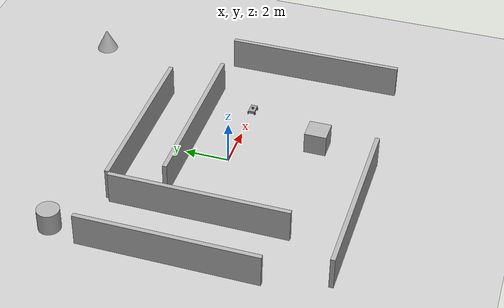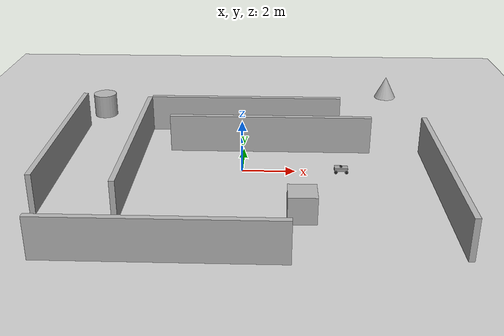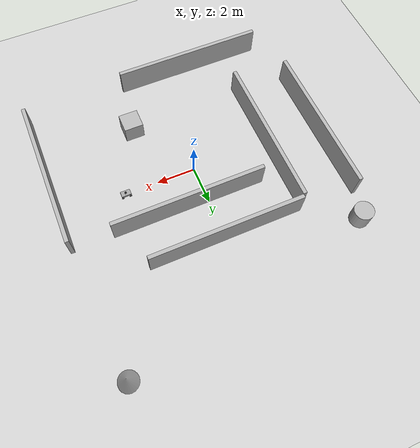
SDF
<?xml version="1.0"?>
<sdf version='1.10'>
  <world name='teranova'>
    <physics name='1ms' type='ignored'>
      <max_step_size>0.001</max_step_size>
      <real_time_factor>1</real_time_factor>
      <real_time_update_rate>1000</real_time_update_rate>
    </physics>
    <plugin name='gz::sim::systems::Sensors' filename='gz-sim-sensors-system'>
      <render_engine>ogre2</render_engine>
    </plugin>
    <plugin name='gz::sim::systems::Physics' filename='gz-sim-physics-system'/>
    <plugin name='gz::sim::systems::UserCommands' filename='gz-sim-user-commands-system'/>
    <plugin name='gz::sim::systems::SceneBroadcaster' filename='gz-sim-scene-broadcaster-system'/>
    <plugin name='gz::sim::systems::Contact' filename='gz-sim-contact-system'/>
    <gravity>0 0 -9.8000000000000007</gravity>
    <magnetic_field>5.5644999999999998e-06 2.2875799999999999e-05 -4.2388400000000002e-05</magnetic_field>
    <atmosphere type='adiabatic'/>
    <scene>
      <ambient>0.400000006 0.400000006 0.400000006 1</ambient>
      <background>0.699999988 0.699999988 0.699999988 1</background>
      <shadows>true</shadows>
    </scene>
    <model name='ground_plane'>
      <static>true</static>
      <link name='link'>
        <collision name='collision'>
          <geometry>
            <plane>
              <normal>0 0 1</normal>
              <size>100 100</size>
            </plane>
          </geometry>
          <surface>
            <friction>
              <ode/>
            </friction>
            <bounce/>
            <contact/>
          </surface>
        </collision>
        <visual name='visual'>
          <geometry>
            <plane>
              <normal>0 0 1</normal>
              <size>100 100</size>
            </plane>
          </geometry>
          <material>
            <ambient>0.800000012 0.800000012 0.800000012 1</ambient>
            <diffuse>0.800000012 0.800000012 0.800000012 1</diffuse>
            <specular>0.800000012 0.800000012 0.800000012 1</specular>
          </material>
        </visual>
        <pose>0 0 0 0 0 0</pose>
        <inertial>
          <pose>0 0 0 0 0 0</pose>
          <mass>1</mass>
          <inertia>
            <ixx>1</ixx>
            <ixy>0</ixy>
            <ixz>0</ixz>
            <iyy>1</iyy>
            <iyz>0</iyz>
            <izz>1</izz>
          </inertia>
        </inertial>
        <enable_wind>false</enable_wind>
      </link>
      <pose>0 0 0 0 0 0</pose>
      <self_collide>false</self_collide>
    </model>
    <model name='wall_back_4m'>
      <static>true</static>
      <pose>-4.0999999999999996 0 0 0 0 0</pose>
      <link name='link'>
        <pose>0 0 0.75 0 0 0</pose>
        <visual name='v'>
          <geometry>
            <box>
              <size>0.20000000000000001 8 1.5</size>
            </box>
          </geometry>
          <material>
            <ambient>0.699999988 0.699999988 0.699999988 1</ambient>
          </material>
          <laser_retro>200</laser_retro>
        </visual>
        <collision name='c'>
          <geometry>
            <box>
              <size>0.20000000000000001 8 1.5</size>
            </box>
          </geometry>
          <surface>
            <friction>
              <ode/>
            </friction>
            <bounce/>
            <contact/>
          </surface>
        </collision>
        <inertial>
          <pose>0 0 0 0 0 0</pose>
          <mass>1</mass>
          <inertia>
            <ixx>1</ixx>
            <ixy>0</ixy>
            <ixz>0</ixz>
            <iyy>1</iyy>
            <iyz>0</iyz>
            <izz>1</izz>
          </inertia>
        </inertial>
        <enable_wind>false</enable_wind>
      </link>
      <self_collide>false</self_collide>
    </model>
    <model name='wall_left_4m'>
      <static>true</static>
      <pose>0 4.0999999999999996 0 0 0 1.57079632679</pose>
      <link name='link'>
        <pose>0 0 0.75 0 0 0</pose>
        <visual name='v'>
          <geometry>
            <box>
              <size>0.20000000000000001 8 1.5</size>
            </box>
          </geometry>
          <material>
            <ambient>0.699999988 0.699999988 0.699999988 1</ambient>
          </material>
          <laser_retro>200</laser_retro>
        </visual>
        <collision name='c'>
          <geometry>
            <box>
              <size>0.20000000000000001 8 1.5</size>
            </box>
          </geometry>
          <surface>
            <friction>
              <ode/>
            </friction>
            <bounce/>
            <contact/>
          </surface>
        </collision>
        <inertial>
          <pose>0 0 0 0 0 0</pose>
          <mass>1</mass>
          <inertia>
            <ixx>1</ixx>
            <ixy>0</ixy>
            <ixz>0</ixz>
            <iyy>1</iyy>
            <iyz>0</iyz>
            <izz>1</izz>
          </inertia>
        </inertial>
        <enable_wind>false</enable_wind>
      </link>
      <self_collide>false</self_collide>
    </model>
    <model name='skid_steer_bot'>
      <link name='base_link'>
        <inertial>
          <pose>0 0 0.0024691358024691362 0 0 0</pose>
          <mass>8.0999999999999996</mass>
          <inertia>
            <ixx>0.15396061728395061</ixx>
            <ixy>0</ixy>
            <ixz>0</ixz>
            <iyy>0.2039606172839506</iyy>
            <iyz>0</iyz>
            <izz>0.25001000000000001</izz>
          </inertia>
        </inertial>
        <collision name='base_link_collision'>
          <pose>0 0 0.12 0 0 0</pose>
          <geometry>
            <box>
              <size>0.5 0.29999999999999999 0.12</size>
            </box>
          </geometry>
          <surface>
            <friction>
              <ode/>
            </friction>
            <bounce/>
            <contact/>
          </surface>
        </collision>
        <collision name='base_link_fixed_joint_lump__lidar_link_collision_1'>
          <pose>0 0 0.20000000000000001 0 0 0</pose>
          <geometry>
            <cylinder>
              <length>0.050000000000000003</length>
              <radius>0.050000000000000003</radius>
            </cylinder>
          </geometry>
          <surface>
            <contact>
              <ode/>
            </contact>
            <friction>
              <ode/>
            </friction>
            <bounce/>
          </surface>
        </collision>
        <visual name='base_link_visual'>
          <pose>0 0 0.12 0 0 0</pose>
          <geometry>
            <box>
              <size>0.5 0.29999999999999999 0.12</size>
            </box>
          </geometry>
          <material>
            <diffuse>0.625 0.625 0.625 1</diffuse>
            <ambient>0.625 0.625 0.625 1</ambient>
          </material>
        </visual>
        <visual name='base_link_fixed_joint_lump__lidar_link_visual_1'>
          <pose>0 0 0.20000000000000001 0 0 0</pose>
          <geometry>
            <cylinder>
              <length>0.050000000000000003</length>
              <radius>0.050000000000000003</radius>
            </cylinder>
          </geometry>
          <material>
            <diffuse>0.125 0.125 0.125 1</diffuse>
            <ambient>0.125 0.125 0.125 1</ambient>
          </material>
        </visual>
        <sensor name='gpu_lidar' type='gpu_lidar'>
          <pose>0 0 0.20000000000000001 0 0 0</pose>
          <topic>lidar</topic>
          <update_rate>2</update_rate>
          <enable_metrics>false</enable_metrics>
          <lidar>
            <scan>
              <horizontal>
                <samples>1200</samples>
                <resolution>1</resolution>
                <min_angle>-1.396263</min_angle>
                <max_angle>1.396263</max_angle>
              </horizontal>
              <vertical>
                <samples>1</samples>
                <min_angle>0</min_angle>
                <max_angle>0</max_angle>
                <resolution>0.01</resolution>
              </vertical>
            </scan>
            <range>
              <min>0.080000000000000002</min>
              <max>1</max>
              <resolution>0.01</resolution>
            </range>
            <noise>
              <type>none</type>
              <mean>0</mean>
              <stddev>0</stddev>
            </noise>
            <visibility_mask>4294967295</visibility_mask>
          </lidar>
        </sensor>
        <pose>0 0 0 0 0 0</pose>
        <enable_wind>false</enable_wind>
      </link>
      <joint name='fl_wheel_joint' type='revolute'>
        <pose>0 0 0 0 0 0</pose>
        <parent>base_link</parent>
        <child>fl_wheel</child>
        <axis>
          <xyz>0 1 0</xyz>
          <limit>
            <lower>-inf</lower>
            <upper>inf</upper>
            <effort>inf</effort>
            <velocity>inf</velocity>
            <stiffness>100000000</stiffness>
            <dissipation>1</dissipation>
          </limit>
          <dynamics>
            <spring_reference>0</spring_reference>
            <spring_stiffness>0</spring_stiffness>
            <damping>0</damping>
            <friction>0</friction>
          </dynamics>
        </axis>
      </joint>
      <link name='fl_wheel'>
        <pose>0.20000000000000062 0.16499999999999998 0.030000000000000006 -3.1415926535897931 -0.31255971883344169 3.1415926535897931</pose>
        <inertial>
          <pose>0 0 0 0 0 0</pose>
          <mass>0.5</mass>
          <inertia>
            <ixx>0.001</ixx>
            <ixy>0</ixy>
            <ixz>0</ixz>
            <iyy>0.001</iyy>
            <iyz>0</iyz>
            <izz>0.001</izz>
          </inertia>
        </inertial>
        <collision name='fl_wheel_collision'>
          <pose>0 0 0 1.5708 0 0</pose>
          <geometry>
            <cylinder>
              <length>0.029999999999999999</length>
              <radius>0.059999999999999998</radius>
            </cylinder>
          </geometry>
          <surface>
            <contact>
              <ode>
                <kp>1000000000000</kp>
                <kd>10</kd>
                <max_vel>0.10000000000000001</max_vel>
                <min_depth>0.001</min_depth>
              </ode>
            </contact>
            <friction>
              <ode>
                <mu>1000000000000000</mu>
                <mu2>1000000000000000</mu2>
                <fdir1>1 0 0</fdir1>
              </ode>
            </friction>
            <bounce/>
          </surface>
        </collision>
        <visual name='fl_wheel_visual'>
          <pose>0 0 0 1.5708 0 0</pose>
          <geometry>
            <cylinder>
              <length>0.029999999999999999</length>
              <radius>0.059999999999999998</radius>
            </cylinder>
          </geometry>
          <material>
            <diffuse>0.125 0.125 0.125 1</diffuse>
            <ambient>0.125 0.125 0.125 1</ambient>
          </material>
        </visual>
        <enable_wind>false</enable_wind>
      </link>
      <joint name='fr_wheel_joint' type='revolute'>
        <pose>0 0 0 0 0 0</pose>
        <parent>base_link</parent>
        <child>fr_wheel</child>
        <axis>
          <xyz>0 1 0</xyz>
          <limit>
            <lower>-inf</lower>
            <upper>inf</upper>
            <effort>inf</effort>
            <velocity>inf</velocity>
            <stiffness>100000000</stiffness>
            <dissipation>1</dissipation>
          </limit>
          <dynamics>
            <spring_reference>0</spring_reference>
            <spring_stiffness>0</spring_stiffness>
            <damping>0</damping>
            <friction>0</friction>
          </dynamics>
        </axis>
      </joint>
      <link name='fr_wheel'>
        <pose>0.20000000000000062 -0.16499999999999998 0.030000000000000013 -3.1415926535897931 -1.0697080045508096 -3.1415926535897931</pose>
        <inertial>
          <pose>0 0 0 0 0 0</pose>
          <mass>0.5</mass>
          <inertia>
            <ixx>0.001</ixx>
            <ixy>0</ixy>
            <ixz>0</ixz>
            <iyy>0.001</iyy>
            <iyz>0</iyz>
            <izz>0.001</izz>
          </inertia>
        </inertial>
        <collision name='fr_wheel_collision'>
          <pose>0 0 0 1.5708 0 0</pose>
          <geometry>
            <cylinder>
              <length>0.029999999999999999</length>
              <radius>0.059999999999999998</radius>
            </cylinder>
          </geometry>
          <surface>
            <contact>
              <ode>
                <kp>1000000000000</kp>
                <kd>10</kd>
                <max_vel>0.10000000000000001</max_vel>
                <min_depth>0.001</min_depth>
              </ode>
            </contact>
            <friction>
              <ode>
                <mu>1000000000000000</mu>
                <mu2>1000000000000000</mu2>
                <fdir1>1 0 0</fdir1>
              </ode>
            </friction>
            <bounce/>
          </surface>
        </collision>
        <visual name='fr_wheel_visual'>
          <pose>0 0 0 1.5708 0 0</pose>
          <geometry>
            <cylinder>
              <length>0.029999999999999999</length>
              <radius>0.059999999999999998</radius>
            </cylinder>
          </geometry>
          <material>
            <diffuse>0.125 0.125 0.125 1</diffuse>
            <ambient>0.125 0.125 0.125 1</ambient>
          </material>
        </visual>
        <enable_wind>false</enable_wind>
      </link>
      <joint name='rl_wheel_joint' type='revolute'>
        <pose>0 0 0 0 0 0</pose>
        <parent>base_link</parent>
        <child>rl_wheel</child>
        <axis>
          <xyz>0 1 0</xyz>
          <limit>
            <lower>-inf</lower>
            <upper>inf</upper>
            <effort>inf</effort>
            <velocity>inf</velocity>
            <stiffness>100000000</stiffness>
            <dissipation>1</dissipation>
          </limit>
          <dynamics>
            <spring_reference>0</spring_reference>
            <spring_stiffness>0</spring_stiffness>
            <damping>0</damping>
            <friction>0</friction>
          </dynamics>
        </axis>
      </joint>
      <link name='rl_wheel'>
        <pose>-0.19999999999999973 0.16500000000000004 0.030000000000000013 -3.1415926535897931 -0.30790837986656133 -3.1415926535897931</pose>
        <inertial>
          <pose>0 0 0 0 0 0</pose>
          <mass>0.5</mass>
          <inertia>
            <ixx>0.001</ixx>
            <ixy>0</ixy>
            <ixz>0</ixz>
            <iyy>0.001</iyy>
            <iyz>0</iyz>
            <izz>0.001</izz>
          </inertia>
        </inertial>
        <collision name='rl_wheel_collision'>
          <pose>0 0 0 1.5708 0 0</pose>
          <geometry>
            <cylinder>
              <length>0.029999999999999999</length>
              <radius>0.059999999999999998</radius>
            </cylinder>
          </geometry>
          <surface>
            <contact>
              <ode>
                <kp>1000000000000</kp>
                <kd>10</kd>
                <max_vel>0.10000000000000001</max_vel>
                <min_depth>0.001</min_depth>
              </ode>
            </contact>
            <friction>
              <ode>
                <mu>1000000000000000</mu>
                <mu2>1000000000000000</mu2>
                <fdir1>1 0 0</fdir1>
              </ode>
            </friction>
            <bounce/>
          </surface>
        </collision>
        <visual name='rl_wheel_visual'>
          <pose>0 0 0 1.5708 0 0</pose>
          <geometry>
            <cylinder>
              <length>0.029999999999999999</length>
              <radius>0.059999999999999998</radius>
            </cylinder>
          </geometry>
          <material>
            <diffuse>0.125 0.125 0.125 1</diffuse>
            <ambient>0.125 0.125 0.125 1</ambient>
          </material>
        </visual>
        <enable_wind>false</enable_wind>
      </link>
      <joint name='rr_wheel_joint' type='revolute'>
        <pose>0 0 0 0 0 0</pose>
        <parent>base_link</parent>
        <child>rr_wheel</child>
        <axis>
          <xyz>0 1 0</xyz>
          <limit>
            <lower>-inf</lower>
            <upper>inf</upper>
            <effort>inf</effort>
            <velocity>inf</velocity>
            <stiffness>100000000</stiffness>
            <dissipation>1</dissipation>
          </limit>
          <dynamics>
            <spring_reference>0</spring_reference>
            <spring_stiffness>0</spring_stiffness>
            <damping>0</damping>
            <friction>0</friction>
          </dynamics>
        </axis>
      </joint>
      <link name='rr_wheel'>
        <pose>-0.19999999999999929 -0.16500000000000006 0.030000000000000006 -3.1415926535897931 -1.1266930667758199 3.1415926535897931</pose>
        <inertial>
          <pose>0 0 0 0 0 0</pose>
          <mass>0.5</mass>
          <inertia>
            <ixx>0.001</ixx>
            <ixy>0</ixy>
            <ixz>0</ixz>
            <iyy>0.001</iyy>
            <iyz>0</iyz>
            <izz>0.001</izz>
          </inertia>
        </inertial>
        <collision name='rr_wheel_collision'>
          <pose>0 0 0 1.5708 0 0</pose>
          <geometry>
            <cylinder>
              <length>0.029999999999999999</length>
              <radius>0.059999999999999998</radius>
            </cylinder>
          </geometry>
          <surface>
            <contact>
              <ode>
                <kp>1000000000000</kp>
                <kd>10</kd>
                <max_vel>0.10000000000000001</max_vel>
                <min_depth>0.001</min_depth>
              </ode>
            </contact>
            <friction>
              <ode>
                <mu>1000000000000000</mu>
                <mu2>1000000000000000</mu2>
                <fdir1>1 0 0</fdir1>
              </ode>
            </friction>
            <bounce/>
          </surface>
        </collision>
        <visual name='rr_wheel_visual'>
          <pose>0 0 0 1.5708 0 0</pose>
          <geometry>
            <cylinder>
              <length>0.029999999999999999</length>
              <radius>0.059999999999999998</radius>
            </cylinder>
          </geometry>
          <material>
            <diffuse>0.125 0.125 0.125 1</diffuse>
            <ambient>0.125 0.125 0.125 1</ambient>
          </material>
        </visual>
        <enable_wind>false</enable_wind>
      </link>
      <plugin name='ign_ros2_control::IgnitionROS2ControlPlugin' filename='ign_ros2_control-system'>
        <parameters>/home/tersoo/autonomous-robot-logging-with-ROS2-jazzy/myros2_ws/src/robot_logging/config/controllers.yaml</parameters>
      </plugin>
      <frame name='lidar_joint' attached_to='base_link'>
        <pose>0 0 0.20000000000000001 0 0 0</pose>
      </frame>
      <frame name='lidar_link' attached_to='lidar_joint'>
        <pose>0 0 0 0 0 0</pose>
      </frame>
      <pose>3.7399983044138501 -0.00052805678906711877 0.029999691508094048 7.7274540169695687e-08 -1.711647743660328e-06 -4.8719732886726668e-06</pose>
      <static>false</static>
      <self_collide>false</self_collide>
    </model>
    <model name='wall_left_4m_1'>
      <static>true</static>
      <pose>1.040340461321497 1.8905099036823381 0 0 0 1.5707999672671704</pose>
      <link name='link'>
        <pose>0 0 0.75 0 0 0</pose>
        <visual name='v'>
          <geometry>
            <box>
              <size>0.20000000000000001 8 1.5</size>
            </box>
          </geometry>
          <material>
            <ambient>0.699999988 0.699999988 0.699999988 1</ambient>
          </material>
          <laser_retro>200</laser_retro>
        </visual>
        <collision name='c'>
          <geometry>
            <box>
              <size>0.20000000000000001 8 1.5</size>
            </box>
          </geometry>
          <surface>
            <friction>
              <ode/>
            </friction>
            <bounce/>
            <contact/>
          </surface>
        </collision>
      </link>
      <self_collide>false</self_collide>
    </model>
    <model name='wall_back_4m_1'>
      <static>true</static>
      <pose>7.125034423249387 -2.0376556480342307 0 0 0 0</pose>
      <link name='link'>
        <pose>0 0 0.75 0 0 0</pose>
        <visual name='v'>
          <geometry>
            <box>
              <size>0.20000000000000001 8 1.5</size>
            </box>
          </geometry>
          <material>
            <ambient>0.699999988 0.699999988 0.699999988 1</ambient>
          </material>
          <laser_retro>200</laser_retro>
        </visual>
        <collision name='c'>
          <geometry>
            <box>
              <size>0.20000000000000001 8 1.5</size>
            </box>
          </geometry>
          <surface>
            <friction>
              <ode/>
            </friction>
            <bounce/>
            <contact/>
          </surface>
        </collision>
      </link>
      <self_collide>false</self_collide>
    </model>
    <model name='wall_back_4m_2'>
      <static>true</static>
      <pose>-6.958503617464018 0.38466526047153266 0 0 0 0</pose>
      <link name='link'>
        <pose>0 0 0.75 0 0 0</pose>
        <visual name='v'>
          <geometry>
            <box>
              <size>0.20000000000000001 8 1.5</size>
            </box>
          </geometry>
          <material>
            <ambient>0.699999988 0.699999988 0.699999988 1</ambient>
          </material>
          <laser_retro>200</laser_retro>
        </visual>
        <collision name='c'>
          <geometry>
            <box>
              <size>0.20000000000000001 8 1.5</size>
            </box>
          </geometry>
          <surface>
            <friction>
              <ode/>
            </friction>
            <bounce/>
            <contact/>
          </surface>
        </collision>
      </link>
      <self_collide>false</self_collide>
    </model>
    <model name='wall_left_4m_2'>
      <static>true</static>
      <pose>-2.2937128460043121 -6.2794599310960937 0 0 0 1.5707999672671704</pose>
      <link name='link'>
        <pose>0 0 0.75 0 0 0</pose>
        <visual name='v'>
          <geometry>
            <box>
              <size>0.20000000000000001 8 1.5</size>
            </box>
          </geometry>
          <material>
            <ambient>0.699999988 0.699999988 0.699999988 1</ambient>
          </material>
          <laser_retro>200</laser_retro>
        </visual>
        <collision name='c'>
          <geometry>
            <box>
              <size>0.20000000000000001 8 1.5</size>
            </box>
          </geometry>
          <surface>
            <friction>
              <ode/>
            </friction>
            <bounce/>
            <contact/>
          </surface>
        </collision>
      </link>
      <self_collide>false</self_collide>
    </model>
    <model name='cone'>
      <pose>6.6315281490987292 8.4752279852678001 0.49999999993296756 5.2544931075677214e-17 -7.7132841038480847e-10 -7.6328321314384305e-23</pose>
      <link name='cone_link'>
        <inertial>
          <inertia>
            <ixx>0.074999999999999997</ixx>
            <ixy>0</ixy>
            <ixz>0</ixz>
            <iyy>0.074999999999999997</iyy>
            <iyz>0</iyz>
            <izz>0.074999999999999997</izz>
          </inertia>
          <mass>1</mass>
          <pose>0 0 0 0 0 0</pose>
        </inertial>
        <collision name='cone_collision'>
          <geometry>
            <cone>
              <radius>0.5</radius>
              <length>1</length>
            </cone>
          </geometry>
          <surface>
            <friction>
              <ode/>
            </friction>
            <bounce/>
            <contact/>
          </surface>
        </collision>
        <visual name='cone_visual'>
          <geometry>
            <cone>
              <radius>0.5</radius>
              <length>1</length>
            </cone>
          </geometry>
          <material>
            <ambient>0.300000012 0.300000012 0.300000012 1</ambient>
            <diffuse>0.699999988 0.699999988 0.699999988 1</diffuse>
            <specular>1 1 1 1</specular>
          </material>
        </visual>
        <pose>0 0 0 0 0 0</pose>
        <enable_wind>false</enable_wind>
      </link>
      <static>false</static>
      <self_collide>false</self_collide>
    </model>
    <model name='cylinder'>
      <pose>-6.4669665388559237 5.7339462795535558 0.49999942638036005 -4.8238581177880127e-19 -2.6729657011331808e-19 -8.2630039660255358e-21</pose>
      <link name='cylinder_link'>
        <inertial>
          <inertia>
            <ixx>0.14580000000000001</ixx>
            <ixy>0</ixy>
            <ixz>0</ixz>
            <iyy>0.14580000000000001</iyy>
            <iyz>0</iyz>
            <izz>0.125</izz>
          </inertia>
          <mass>1</mass>
          <pose>0 0 0 0 0 0</pose>
        </inertial>
        <collision name='cylinder_collision'>
          <geometry>
            <cylinder>
              <radius>0.5</radius>
              <length>1</length>
            </cylinder>
          </geometry>
          <surface>
            <friction>
              <ode/>
            </friction>
            <bounce/>
            <contact/>
          </surface>
        </collision>
        <visual name='cylinder_visual'>
          <geometry>
            <cylinder>
              <radius>0.5</radius>
              <length>1</length>
            </cylinder>
          </geometry>
          <material>
            <ambient>0.300000012 0.300000012 0.300000012 1</ambient>
            <diffuse>0.699999988 0.699999988 0.699999988 1</diffuse>
            <specular>1 1 1 1</specular>
          </material>
        </visual>
        <pose>0 0 0 0 0 0</pose>
        <enable_wind>false</enable_wind>
      </link>
      <static>false</static>
      <self_collide>false</self_collide>
    </model>
    <model name='box'>
      <pose>2.1197627931632708 -3.5210131456730362 0.49999999990199806 6.2287739151293738e-22 9.3279666454713669e-22 -3.6315533669320137e-22</pose>
      <link name='box_link'>
        <inertial>
          <inertia>
            <ixx>0.16666</ixx>
            <ixy>0</ixy>
            <ixz>0</ixz>
            <iyy>0.16666</iyy>
            <iyz>0</iyz>
            <izz>0.16666</izz>
          </inertia>
          <mass>1</mass>
          <pose>0 0 0 0 0 0</pose>
        </inertial>
        <collision name='box_collision'>
          <geometry>
            <box>
              <size>1 1 1</size>
            </box>
          </geometry>
          <surface>
            <friction>
              <ode/>
            </friction>
            <bounce/>
            <contact/>
          </surface>
        </collision>
        <visual name='box_visual'>
          <geometry>
            <box>
              <size>1 1 1</size>
            </box>
          </geometry>
          <material>
            <ambient>0.300000012 0.300000012 0.300000012 1</ambient>
            <diffuse>0.699999988 0.699999988 0.699999988 1</diffuse>
            <specular>1 1 1 1</specular>
          </material>
        </visual>
        <pose>0 0 0 0 0 0</pose>
        <enable_wind>false</enable_wind>
      </link>
      <static>false</static>
      <self_collide>false</self_collide>
    </model>
    <light name='sun' type='directional'>
      <pose>0 0 10 0 0 0</pose>
      <cast_shadows>true</cast_shadows>
      <intensity>1</intensity>
      <direction>-0.5 0.10000000000000001 -0.90000000000000002</direction>
      <diffuse>0.800000012 0.800000012 0.800000012 1</diffuse>
      <specular>0.200000003 0.200000003 0.200000003 1</specular>
      <attenuation>
        <range>1000</range>
        <linear>0.01</linear>
        <constant>0.90000000000000002</constant>
        <quadratic>0.001</quadratic>
      </attenuation>
      <spot>
        <inner_angle>0</inner_angle>
        <outer_angle>0</outer_angle>
        <falloff>0</falloff>
      </spot>
    </light>
  </world>
</sdf>
